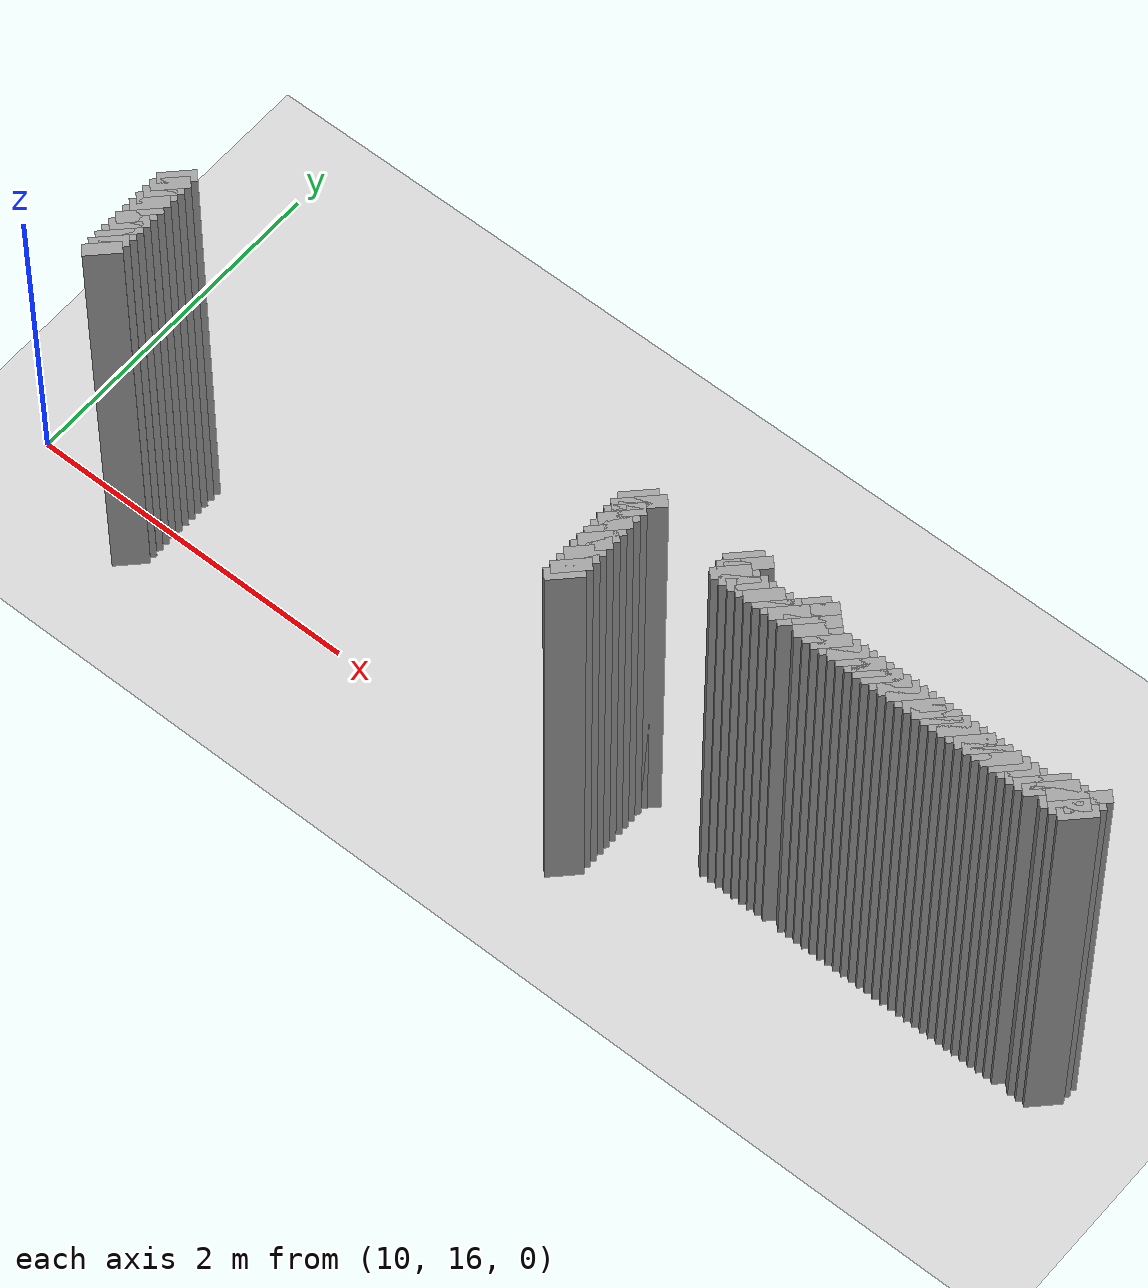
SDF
<sdf version="1.5">
 <world name="default">
  <include><uri>model://ground_plane</uri></include>
  <include><uri>model://sun</uri></include>
  <model name="grey_wall_467">
   <static>1</static>
   <link name="link">
    <pose>14.3 16.35  1.4 0 0 -0.785398163397</pose>
    <collision name="collision"><geometry><box><size>0.0707106781187 .2  2.8</size></box></geometry></collision>
    <visual name="visual">
     <cast_shadows>0</cast_shadows>
     <geometry><box><size>0.0707106781187 .2  2.8</size></box></geometry>
     <material>
      <script>
       <uri>model://grey_wall/materials/scripts</uri>
       <uri>model://grey_wall/materials/textures</uri>
       <name>vrc/grey_wall</name>
      </script>
     </material>
    </visual>
   </link>
  </model>
  <model name="grey_wall_468">
   <static>1</static>
   <link name="link">
    <pose>14.35 16.35  1.4 0 0 -0.785398163397</pose>
    <collision name="collision"><geometry><box><size>0.0707106781187 .2  2.8</size></box></geometry></collision>
    <visual name="visual">
     <cast_shadows>0</cast_shadows>
     <geometry><box><size>0.0707106781187 .2  2.8</size></box></geometry>
     <material>
      <script>
       <uri>model://grey_wall/materials/scripts</uri>
       <uri>model://grey_wall/materials/textures</uri>
       <name>vrc/grey_wall</name>
      </script>
     </material>
    </visual>
   </link>
  </model>
  <model name="grey_wall_469">
   <static>1</static>
   <link name="link">
    <pose>14.7 16.35  1.4 0 0 -0.785398163397</pose>
    <collision name="collision"><geometry><box><size>0.0707106781187 .2  2.8</size></box></geometry></collision>
    <visual name="visual">
     <cast_shadows>0</cast_shadows>
     <geometry><box><size>0.0707106781187 .2  2.8</size></box></geometry>
     <material>
      <script>
       <uri>model://grey_wall/materials/scripts</uri>
       <uri>model://grey_wall/materials/textures</uri>
       <name>vrc/grey_wall</name>
      </script>
     </material>
    </visual>
   </link>
  </model>
  <model name="grey_wall_470">
   <static>1</static>
   <link name="link">
    <pose>14.75 16.35  1.4 0 0 -0.785398163397</pose>
    <collision name="collision"><geometry><box><size>0.0707106781187 .2  2.8</size></box></geometry></collision>
    <visual name="visual">
     <cast_shadows>0</cast_shadows>
     <geometry><box><size>0.0707106781187 .2  2.8</size></box></geometry>
     <material>
      <script>
       <uri>model://grey_wall/materials/scripts</uri>
       <uri>model://grey_wall/materials/textures</uri>
       <name>vrc/grey_wall</name>
      </script>
     </material>
    </visual>
   </link>
  </model>
  <model name="grey_wall_471">
   <static>1</static>
   <link name="link">
    <pose>16.35 16.35  1.4 0 0 -0.785398163397</pose>
    <collision name="collision"><geometry><box><size>0.0707106781187 .2  2.8</size></box></geometry></collision>
    <visual name="visual">
     <cast_shadows>0</cast_shadows>
     <geometry><box><size>0.0707106781187 .2  2.8</size></box></geometry>
     <material>
      <script>
       <uri>model://grey_wall/materials/scripts</uri>
       <uri>model://grey_wall/materials/textures</uri>
       <name>vrc/grey_wall</name>
      </script>
     </material>
    </visual>
   </link>
  </model>
  <model name="grey_wall_472">
   <static>1</static>
   <link name="link">
    <pose>10.8 16.3  1.4 0 0 -0.785398163397</pose>
    <collision name="collision"><geometry><box><size>0.0707106781187 .2  2.8</size></box></geometry></collision>
    <visual name="visual">
     <cast_shadows>0</cast_shadows>
     <geometry><box><size>0.0707106781187 .2  2.8</size></box></geometry>
     <material>
      <script>
       <uri>model://grey_wall/materials/scripts</uri>
       <uri>model://grey_wall/materials/textures</uri>
       <name>vrc/grey_wall</name>
      </script>
     </material>
    </visual>
   </link>
  </model>
  <model name="grey_wall_473">
   <static>1</static>
   <link name="link">
    <pose>13.7 16.3  1.4 0 0 -0.785398163397</pose>
    <collision name="collision"><geometry><box><size>0.0707106781187 .2  2.8</size></box></geometry></collision>
    <visual name="visual">
     <cast_shadows>0</cast_shadows>
     <geometry><box><size>0.0707106781187 .2  2.8</size></box></geometry>
     <material>
      <script>
       <uri>model://grey_wall/materials/scripts</uri>
       <uri>model://grey_wall/materials/textures</uri>
       <name>vrc/grey_wall</name>
      </script>
     </material>
    </visual>
   </link>
  </model>
  <model name="grey_wall_474">
   <static>1</static>
   <link name="link">
    <pose>13.75 16.3  1.4 0 0 -0.785398163397</pose>
    <collision name="collision"><geometry><box><size>0.0707106781187 .2  2.8</size></box></geometry></collision>
    <visual name="visual">
     <cast_shadows>0</cast_shadows>
     <geometry><box><size>0.0707106781187 .2  2.8</size></box></geometry>
     <material>
      <script>
       <uri>model://grey_wall/materials/scripts</uri>
       <uri>model://grey_wall/materials/textures</uri>
       <name>vrc/grey_wall</name>
      </script>
     </material>
    </visual>
   </link>
  </model>
  <model name="grey_wall_475">
   <static>1</static>
   <link name="link">
    <pose>14.3 16.3  1.4 0 0 -0.785398163397</pose>
    <collision name="collision"><geometry><box><size>0.0707106781187 .2  2.8</size></box></geometry></collision>
    <visual name="visual">
     <cast_shadows>0</cast_shadows>
     <geometry><box><size>0.0707106781187 .2  2.8</size></box></geometry>
     <material>
      <script>
       <uri>model://grey_wall/materials/scripts</uri>
       <uri>model://grey_wall/materials/textures</uri>
       <name>vrc/grey_wall</name>
      </script>
     </material>
    </visual>
   </link>
  </model>
  <model name="grey_wall_476">
   <static>1</static>
   <link name="link">
    <pose>14.7 16.3  1.4 0 0 -0.785398163397</pose>
    <collision name="collision"><geometry><box><size>0.0707106781187 .2  2.8</size></box></geometry></collision>
    <visual name="visual">
     <cast_shadows>0</cast_shadows>
     <geometry><box><size>0.0707106781187 .2  2.8</size></box></geometry>
     <material>
      <script>
       <uri>model://grey_wall/materials/scripts</uri>
       <uri>model://grey_wall/materials/textures</uri>
       <name>vrc/grey_wall</name>
      </script>
     </material>
    </visual>
   </link>
  </model>
  <model name="grey_wall_477">
   <static>1</static>
   <link name="link">
    <pose>14.75 16.3  1.4 0 0 -0.785398163397</pose>
    <collision name="collision"><geometry><box><size>0.0707106781187 .2  2.8</size></box></geometry></collision>
    <visual name="visual">
     <cast_shadows>0</cast_shadows>
     <geometry><box><size>0.0707106781187 .2  2.8</size></box></geometry>
     <material>
      <script>
       <uri>model://grey_wall/materials/scripts</uri>
       <uri>model://grey_wall/materials/textures</uri>
       <name>vrc/grey_wall</name>
      </script>
     </material>
    </visual>
   </link>
  </model>
  <model name="grey_wall_478">
   <static>1</static>
   <link name="link">
    <pose>14.8 16.3  1.4 0 0 -0.785398163397</pose>
    <collision name="collision"><geometry><box><size>0.0707106781187 .2  2.8</size></box></geometry></collision>
    <visual name="visual">
     <cast_shadows>0</cast_shadows>
     <geometry><box><size>0.0707106781187 .2  2.8</size></box></geometry>
     <material>
      <script>
       <uri>model://grey_wall/materials/scripts</uri>
       <uri>model://grey_wall/materials/textures</uri>
       <name>vrc/grey_wall</name>
      </script>
     </material>
    </visual>
   </link>
  </model>
  <model name="grey_wall_479">
   <static>1</static>
   <link name="link">
    <pose>16.15 16.3  1.4 0 0 -0.785398163397</pose>
    <collision name="collision"><geometry><box><size>0.0707106781187 .2  2.8</size></box></geometry></collision>
    <visual name="visual">
     <cast_shadows>0</cast_shadows>
     <geometry><box><size>0.0707106781187 .2  2.8</size></box></geometry>
     <material>
      <script>
       <uri>model://grey_wall/materials/scripts</uri>
       <uri>model://grey_wall/materials/textures</uri>
       <name>vrc/grey_wall</name>
      </script>
     </material>
    </visual>
   </link>
  </model>
  <model name="grey_wall_480">
   <static>1</static>
   <link name="link">
    <pose>16.2 16.3  1.4 0 0 -0.785398163397</pose>
    <collision name="collision"><geometry><box><size>0.0707106781187 .2  2.8</size></box></geometry></collision>
    <visual name="visual">
     <cast_shadows>0</cast_shadows>
     <geometry><box><size>0.0707106781187 .2  2.8</size></box></geometry>
     <material>
      <script>
       <uri>model://grey_wall/materials/scripts</uri>
       <uri>model://grey_wall/materials/textures</uri>
       <name>vrc/grey_wall</name>
      </script>
     </material>
    </visual>
   </link>
  </model>
  <model name="grey_wall_481">
   <static>1</static>
   <link name="link">
    <pose>16.25 16.3  1.4 0 0 -0.785398163397</pose>
    <collision name="collision"><geometry><box><size>0.0707106781187 .2  2.8</size></box></geometry></collision>
    <visual name="visual">
     <cast_shadows>0</cast_shadows>
     <geometry><box><size>0.0707106781187 .2  2.8</size></box></geometry>
     <material>
      <script>
       <uri>model://grey_wall/materials/scripts</uri>
       <uri>model://grey_wall/materials/textures</uri>
       <name>vrc/grey_wall</name>
      </script>
     </material>
    </visual>
   </link>
  </model>
  <model name="grey_wall_482">
   <static>1</static>
   <link name="link">
    <pose>16.35 16.3  1.4 0 0 -0.785398163397</pose>
    <collision name="collision"><geometry><box><size>0.0707106781187 .2  2.8</size></box></geometry></collision>
    <visual name="visual">
     <cast_shadows>0</cast_shadows>
     <geometry><box><size>0.0707106781187 .2  2.8</size></box></geometry>
     <material>
      <script>
       <uri>model://grey_wall/materials/scripts</uri>
       <uri>model://grey_wall/materials/textures</uri>
       <name>vrc/grey_wall</name>
      </script>
     </material>
    </visual>
   </link>
  </model>
  <model name="grey_wall_483">
   <static>1</static>
   <link name="link">
    <pose>10.8 16.25  1.4 0 0 -0.785398163397</pose>
    <collision name="collision"><geometry><box><size>0.0707106781187 .2  2.8</size></box></geometry></collision>
    <visual name="visual">
     <cast_shadows>0</cast_shadows>
     <geometry><box><size>0.0707106781187 .2  2.8</size></box></geometry>
     <material>
      <script>
       <uri>model://grey_wall/materials/scripts</uri>
       <uri>model://grey_wall/materials/textures</uri>
       <name>vrc/grey_wall</name>
      </script>
     </material>
    </visual>
   </link>
  </model>
  <model name="grey_wall_484">
   <static>1</static>
   <link name="link">
    <pose>13.7 16.25  1.4 0 0 -0.785398163397</pose>
    <collision name="collision"><geometry><box><size>0.0707106781187 .2  2.8</size></box></geometry></collision>
    <visual name="visual">
     <cast_shadows>0</cast_shadows>
     <geometry><box><size>0.0707106781187 .2  2.8</size></box></geometry>
     <material>
      <script>
       <uri>model://grey_wall/materials/scripts</uri>
       <uri>model://grey_wall/materials/textures</uri>
       <name>vrc/grey_wall</name>
      </script>
     </material>
    </visual>
   </link>
  </model>
  <model name="grey_wall_485">
   <static>1</static>
   <link name="link">
    <pose>14.3 16.25  1.4 0 0 -0.785398163397</pose>
    <collision name="collision"><geometry><box><size>0.0707106781187 .2  2.8</size></box></geometry></collision>
    <visual name="visual">
     <cast_shadows>0</cast_shadows>
     <geometry><box><size>0.0707106781187 .2  2.8</size></box></geometry>
     <material>
      <script>
       <uri>model://grey_wall/materials/scripts</uri>
       <uri>model://grey_wall/materials/textures</uri>
       <name>vrc/grey_wall</name>
      </script>
     </material>
    </visual>
   </link>
  </model>
  <model name="grey_wall_486">
   <static>1</static>
   <link name="link">
    <pose>14.35 16.25  1.4 0 0 -0.785398163397</pose>
    <collision name="collision"><geometry><box><size>0.0707106781187 .2  2.8</size></box></geometry></collision>
    <visual name="visual">
     <cast_shadows>0</cast_shadows>
     <geometry><box><size>0.0707106781187 .2  2.8</size></box></geometry>
     <material>
      <script>
       <uri>model://grey_wall/materials/scripts</uri>
       <uri>model://grey_wall/materials/textures</uri>
       <name>vrc/grey_wall</name>
      </script>
     </material>
    </visual>
   </link>
  </model>
  <model name="grey_wall_487">
   <static>1</static>
   <link name="link">
    <pose>14.4 16.25  1.4 0 0 -0.785398163397</pose>
    <collision name="collision"><geometry><box><size>0.0707106781187 .2  2.8</size></box></geometry></collision>
    <visual name="visual">
     <cast_shadows>0</cast_shadows>
     <geometry><box><size>0.0707106781187 .2  2.8</size></box></geometry>
     <material>
      <script>
       <uri>model://grey_wall/materials/scripts</uri>
       <uri>model://grey_wall/materials/textures</uri>
       <name>vrc/grey_wall</name>
      </script>
     </material>
    </visual>
   </link>
  </model>
  <model name="grey_wall_488">
   <static>1</static>
   <link name="link">
    <pose>14.45 16.25  1.4 0 0 -0.785398163397</pose>
    <collision name="collision"><geometry><box><size>0.0707106781187 .2  2.8</size></box></geometry></collision>
    <visual name="visual">
     <cast_shadows>0</cast_shadows>
     <geometry><box><size>0.0707106781187 .2  2.8</size></box></geometry>
     <material>
      <script>
       <uri>model://grey_wall/materials/scripts</uri>
       <uri>model://grey_wall/materials/textures</uri>
       <name>vrc/grey_wall</name>
      </script>
     </material>
    </visual>
   </link>
  </model>
  <model name="grey_wall_489">
   <static>1</static>
   <link name="link">
    <pose>14.5 16.25  1.4 0 0 -0.785398163397</pose>
    <collision name="collision"><geometry><box><size>0.0707106781187 .2  2.8</size></box></geometry></collision>
    <visual name="visual">
     <cast_shadows>0</cast_shadows>
     <geometry><box><size>0.0707106781187 .2  2.8</size></box></geometry>
     <material>
      <script>
       <uri>model://grey_wall/materials/scripts</uri>
       <uri>model://grey_wall/materials/textures</uri>
       <name>vrc/grey_wall</name>
      </script>
     </material>
    </visual>
   </link>
  </model>
  <model name="grey_wall_490">
   <static>1</static>
   <link name="link">
    <pose>14.55 16.25  1.4 0 0 -0.785398163397</pose>
    <collision name="collision"><geometry><box><size>0.0707106781187 .2  2.8</size></box></geometry></collision>
    <visual name="visual">
     <cast_shadows>0</cast_shadows>
     <geometry><box><size>0.0707106781187 .2  2.8</size></box></geometry>
     <material>
      <script>
       <uri>model://grey_wall/materials/scripts</uri>
       <uri>model://grey_wall/materials/textures</uri>
       <name>vrc/grey_wall</name>
      </script>
     </material>
    </visual>
   </link>
  </model>
  <model name="grey_wall_491">
   <static>1</static>
   <link name="link">
    <pose>14.6 16.25  1.4 0 0 -0.785398163397</pose>
    <collision name="collision"><geometry><box><size>0.0707106781187 .2  2.8</size></box></geometry></collision>
    <visual name="visual">
     <cast_shadows>0</cast_shadows>
     <geometry><box><size>0.0707106781187 .2  2.8</size></box></geometry>
     <material>
      <script>
       <uri>model://grey_wall/materials/scripts</uri>
       <uri>model://grey_wall/materials/textures</uri>
       <name>vrc/grey_wall</name>
      </script>
     </material>
    </visual>
   </link>
  </model>
  <model name="grey_wall_492">
   <static>1</static>
   <link name="link">
    <pose>14.65 16.25  1.4 0 0 -0.785398163397</pose>
    <collision name="collision"><geometry><box><size>0.0707106781187 .2  2.8</size></box></geometry></collision>
    <visual name="visual">
     <cast_shadows>0</cast_shadows>
     <geometry><box><size>0.0707106781187 .2  2.8</size></box></geometry>
     <material>
      <script>
       <uri>model://grey_wall/materials/scripts</uri>
       <uri>model://grey_wall/materials/textures</uri>
       <name>vrc/grey_wall</name>
      </script>
     </material>
    </visual>
   </link>
  </model>
  <model name="grey_wall_493">
   <static>1</static>
   <link name="link">
    <pose>14.7 16.25  1.4 0 0 -0.785398163397</pose>
    <collision name="collision"><geometry><box><size>0.0707106781187 .2  2.8</size></box></geometry></collision>
    <visual name="visual">
     <cast_shadows>0</cast_shadows>
     <geometry><box><size>0.0707106781187 .2  2.8</size></box></geometry>
     <material>
      <script>
       <uri>model://grey_wall/materials/scripts</uri>
       <uri>model://grey_wall/materials/textures</uri>
       <name>vrc/grey_wall</name>
      </script>
     </material>
    </visual>
   </link>
  </model>
  <model name="grey_wall_494">
   <static>1</static>
   <link name="link">
    <pose>14.8 16.25  1.4 0 0 -0.785398163397</pose>
    <collision name="collision"><geometry><box><size>0.0707106781187 .2  2.8</size></box></geometry></collision>
    <visual name="visual">
     <cast_shadows>0</cast_shadows>
     <geometry><box><size>0.0707106781187 .2  2.8</size></box></geometry>
     <material>
      <script>
       <uri>model://grey_wall/materials/scripts</uri>
       <uri>model://grey_wall/materials/textures</uri>
       <name>vrc/grey_wall</name>
      </script>
     </material>
    </visual>
   </link>
  </model>
  <model name="grey_wall_495">
   <static>1</static>
   <link name="link">
    <pose>14.85 16.25  1.4 0 0 -0.785398163397</pose>
    <collision name="collision"><geometry><box><size>0.0707106781187 .2  2.8</size></box></geometry></collision>
    <visual name="visual">
     <cast_shadows>0</cast_shadows>
     <geometry><box><size>0.0707106781187 .2  2.8</size></box></geometry>
     <material>
      <script>
       <uri>model://grey_wall/materials/scripts</uri>
       <uri>model://grey_wall/materials/textures</uri>
       <name>vrc/grey_wall</name>
      </script>
     </material>
    </visual>
   </link>
  </model>
  <model name="grey_wall_496">
   <static>1</static>
   <link name="link">
    <pose>14.9 16.25  1.4 0 0 -0.785398163397</pose>
    <collision name="collision"><geometry><box><size>0.0707106781187 .2  2.8</size></box></geometry></collision>
    <visual name="visual">
     <cast_shadows>0</cast_shadows>
     <geometry><box><size>0.0707106781187 .2  2.8</size></box></geometry>
     <material>
      <script>
       <uri>model://grey_wall/materials/scripts</uri>
       <uri>model://grey_wall/materials/textures</uri>
       <name>vrc/grey_wall</name>
      </script>
     </material>
    </visual>
   </link>
  </model>
  <model name="grey_wall_497">
   <static>1</static>
   <link name="link">
    <pose>14.95 16.25  1.4 0 0 -0.785398163397</pose>
    <collision name="collision"><geometry><box><size>0.0707106781187 .2  2.8</size></box></geometry></collision>
    <visual name="visual">
     <cast_shadows>0</cast_shadows>
     <geometry><box><size>0.0707106781187 .2  2.8</size></box></geometry>
     <material>
      <script>
       <uri>model://grey_wall/materials/scripts</uri>
       <uri>model://grey_wall/materials/textures</uri>
       <name>vrc/grey_wall</name>
      </script>
     </material>
    </visual>
   </link>
  </model>
  <model name="grey_wall_498">
   <static>1</static>
   <link name="link">
    <pose>15.0 16.25  1.4 0 0 -0.785398163397</pose>
    <collision name="collision"><geometry><box><size>0.0707106781187 .2  2.8</size></box></geometry></collision>
    <visual name="visual">
     <cast_shadows>0</cast_shadows>
     <geometry><box><size>0.0707106781187 .2  2.8</size></box></geometry>
     <material>
      <script>
       <uri>model://grey_wall/materials/scripts</uri>
       <uri>model://grey_wall/materials/textures</uri>
       <name>vrc/grey_wall</name>
      </script>
     </material>
    </visual>
   </link>
  </model>
  <model name="grey_wall_499">
   <static>1</static>
   <link name="link">
    <pose>15.05 16.25  1.4 0 0 -0.785398163397</pose>
    <collision name="collision"><geometry><box><size>0.0707106781187 .2  2.8</size></box></geometry></collision>
    <visual name="visual">
     <cast_shadows>0</cast_shadows>
     <geometry><box><size>0.0707106781187 .2  2.8</size></box></geometry>
     <material>
      <script>
       <uri>model://grey_wall/materials/scripts</uri>
       <uri>model://grey_wall/materials/textures</uri>
       <name>vrc/grey_wall</name>
      </script>
     </material>
    </visual>
   </link>
  </model>
  <model name="grey_wall_500">
   <static>1</static>
   <link name="link">
    <pose>15.1 16.25  1.4 0 0 -0.785398163397</pose>
    <collision name="collision"><geometry><box><size>0.0707106781187 .2  2.8</size></box></geometry></collision>
    <visual name="visual">
     <cast_shadows>0</cast_shadows>
     <geometry><box><size>0.0707106781187 .2  2.8</size></box></geometry>
     <material>
      <script>
       <uri>model://grey_wall/materials/scripts</uri>
       <uri>model://grey_wall/materials/textures</uri>
       <name>vrc/grey_wall</name>
      </script>
     </material>
    </visual>
   </link>
  </model>
  <model name="grey_wall_501">
   <static>1</static>
   <link name="link">
    <pose>15.15 16.25  1.4 0 0 -0.785398163397</pose>
    <collision name="collision"><geometry><box><size>0.0707106781187 .2  2.8</size></box></geometry></collision>
    <visual name="visual">
     <cast_shadows>0</cast_shadows>
     <geometry><box><size>0.0707106781187 .2  2.8</size></box></geometry>
     <material>
      <script>
       <uri>model://grey_wall/materials/scripts</uri>
       <uri>model://grey_wall/materials/textures</uri>
       <name>vrc/grey_wall</name>
      </script>
     </material>
    </visual>
   </link>
  </model>
  <model name="grey_wall_502">
   <static>1</static>
   <link name="link">
    <pose>15.2 16.25  1.4 0 0 -0.785398163397</pose>
    <collision name="collision"><geometry><box><size>0.0707106781187 .2  2.8</size></box></geometry></collision>
    <visual name="visual">
     <cast_shadows>0</cast_shadows>
     <geometry><box><size>0.0707106781187 .2  2.8</size></box></geometry>
     <material>
      <script>
       <uri>model://grey_wall/materials/scripts</uri>
       <uri>model://grey_wall/materials/textures</uri>
       <name>vrc/grey_wall</name>
      </script>
     </material>
    </visual>
   </link>
  </model>
  <model name="grey_wall_503">
   <static>1</static>
   <link name="link">
    <pose>15.25 16.25  1.4 0 0 -0.785398163397</pose>
    <collision name="collision"><geometry><box><size>0.0707106781187 .2  2.8</size></box></geometry></collision>
    <visual name="visual">
     <cast_shadows>0</cast_shadows>
     <geometry><box><size>0.0707106781187 .2  2.8</size></box></geometry>
     <material>
      <script>
       <uri>model://grey_wall/materials/scripts</uri>
       <uri>model://grey_wall/materials/textures</uri>
       <name>vrc/grey_wall</name>
      </script>
     </material>
    </visual>
   </link>
  </model>
  <model name="grey_wall_504">
   <static>1</static>
   <link name="link">
    <pose>15.3 16.25  1.4 0 0 -0.785398163397</pose>
    <collision name="collision"><geometry><box><size>0.0707106781187 .2  2.8</size></box></geometry></collision>
    <visual name="visual">
     <cast_shadows>0</cast_shadows>
     <geometry><box><size>0.0707106781187 .2  2.8</size></box></geometry>
     <material>
      <script>
       <uri>model://grey_wall/materials/scripts</uri>
       <uri>model://grey_wall/materials/textures</uri>
       <name>vrc/grey_wall</name>
      </script>
     </material>
    </visual>
   </link>
  </model>
  <model name="grey_wall_505">
   <static>1</static>
   <link name="link">
    <pose>15.35 16.25  1.4 0 0 -0.785398163397</pose>
    <collision name="collision"><geometry><box><size>0.0707106781187 .2  2.8</size></box></geometry></collision>
    <visual name="visual">
     <cast_shadows>0</cast_shadows>
     <geometry><box><size>0.0707106781187 .2  2.8</size></box></geometry>
     <material>
      <script>
       <uri>model://grey_wall/materials/scripts</uri>
       <uri>model://grey_wall/materials/textures</uri>
       <name>vrc/grey_wall</name>
      </script>
     </material>
    </visual>
   </link>
  </model>
  <model name="grey_wall_506">
   <static>1</static>
   <link name="link">
    <pose>15.4 16.25  1.4 0 0 -0.785398163397</pose>
    <collision name="collision"><geometry><box><size>0.0707106781187 .2  2.8</size></box></geometry></collision>
    <visual name="visual">
     <cast_shadows>0</cast_shadows>
     <geometry><box><size>0.0707106781187 .2  2.8</size></box></geometry>
     <material>
      <script>
       <uri>model://grey_wall/materials/scripts</uri>
       <uri>model://grey_wall/materials/textures</uri>
       <name>vrc/grey_wall</name>
      </script>
     </material>
    </visual>
   </link>
  </model>
  <model name="grey_wall_507">
   <static>1</static>
   <link name="link">
    <pose>15.45 16.25  1.4 0 0 -0.785398163397</pose>
    <collision name="collision"><geometry><box><size>0.0707106781187 .2  2.8</size></box></geometry></collision>
    <visual name="visual">
     <cast_shadows>0</cast_shadows>
     <geometry><box><size>0.0707106781187 .2  2.8</size></box></geometry>
     <material>
      <script>
       <uri>model://grey_wall/materials/scripts</uri>
       <uri>model://grey_wall/materials/textures</uri>
       <name>vrc/grey_wall</name>
      </script>
     </material>
    </visual>
   </link>
  </model>
  <model name="grey_wall_508">
   <static>1</static>
   <link name="link">
    <pose>15.5 16.25  1.4 0 0 -0.785398163397</pose>
    <collision name="collision"><geometry><box><size>0.0707106781187 .2  2.8</size></box></geometry></collision>
    <visual name="visual">
     <cast_shadows>0</cast_shadows>
     <geometry><box><size>0.0707106781187 .2  2.8</size></box></geometry>
     <material>
      <script>
       <uri>model://grey_wall/materials/scripts</uri>
       <uri>model://grey_wall/materials/textures</uri>
       <name>vrc/grey_wall</name>
      </script>
     </material>
    </visual>
   </link>
  </model>
  <model name="grey_wall_509">
   <static>1</static>
   <link name="link">
    <pose>15.55 16.25  1.4 0 0 -0.785398163397</pose>
    <collision name="collision"><geometry><box><size>0.0707106781187 .2  2.8</size></box></geometry></collision>
    <visual name="visual">
     <cast_shadows>0</cast_shadows>
     <geometry><box><size>0.0707106781187 .2  2.8</size></box></geometry>
     <material>
      <script>
       <uri>model://grey_wall/materials/scripts</uri>
       <uri>model://grey_wall/materials/textures</uri>
       <name>vrc/grey_wall</name>
      </script>
     </material>
    </visual>
   </link>
  </model>
  <model name="grey_wall_510">
   <static>1</static>
   <link name="link">
    <pose>15.6 16.25  1.4 0 0 -0.785398163397</pose>
    <collision name="collision"><geometry><box><size>0.0707106781187 .2  2.8</size></box></geometry></collision>
    <visual name="visual">
     <cast_shadows>0</cast_shadows>
     <geometry><box><size>0.0707106781187 .2  2.8</size></box></geometry>
     <material>
      <script>
       <uri>model://grey_wall/materials/scripts</uri>
       <uri>model://grey_wall/materials/textures</uri>
       <name>vrc/grey_wall</name>
      </script>
     </material>
    </visual>
   </link>
  </model>
  <model name="grey_wall_511">
   <static>1</static>
   <link name="link">
    <pose>15.65 16.25  1.4 0 0 -0.785398163397</pose>
    <collision name="collision"><geometry><box><size>0.0707106781187 .2  2.8</size></box></geometry></collision>
    <visual name="visual">
     <cast_shadows>0</cast_shadows>
     <geometry><box><size>0.0707106781187 .2  2.8</size></box></geometry>
     <material>
      <script>
       <uri>model://grey_wall/materials/scripts</uri>
       <uri>model://grey_wall/materials/textures</uri>
       <name>vrc/grey_wall</name>
      </script>
     </material>
    </visual>
   </link>
  </model>
  <model name="grey_wall_512">
   <static>1</static>
   <link name="link">
    <pose>15.7 16.25  1.4 0 0 -0.785398163397</pose>
    <collision name="collision"><geometry><box><size>0.0707106781187 .2  2.8</size></box></geometry></collision>
    <visual name="visual">
     <cast_shadows>0</cast_shadows>
     <geometry><box><size>0.0707106781187 .2  2.8</size></box></geometry>
     <material>
      <script>
       <uri>model://grey_wall/materials/scripts</uri>
       <uri>model://grey_wall/materials/textures</uri>
       <name>vrc/grey_wall</name>
      </script>
     </material>
    </visual>
   </link>
  </model>
  <model name="grey_wall_513">
   <static>1</static>
   <link name="link">
    <pose>15.75 16.25  1.4 0 0 -0.785398163397</pose>
    <collision name="collision"><geometry><box><size>0.0707106781187 .2  2.8</size></box></geometry></collision>
    <visual name="visual">
     <cast_shadows>0</cast_shadows>
     <geometry><box><size>0.0707106781187 .2  2.8</size></box></geometry>
     <material>
      <script>
       <uri>model://grey_wall/materials/scripts</uri>
       <uri>model://grey_wall/materials/textures</uri>
       <name>vrc/grey_wall</name>
      </script>
     </material>
    </visual>
   </link>
  </model>
  <model name="grey_wall_514">
   <static>1</static>
   <link name="link">
    <pose>15.8 16.25  1.4 0 0 -0.785398163397</pose>
    <collision name="collision"><geometry><box><size>0.0707106781187 .2  2.8</size></box></geometry></collision>
    <visual name="visual">
     <cast_shadows>0</cast_shadows>
     <geometry><box><size>0.0707106781187 .2  2.8</size></box></geometry>
     <material>
      <script>
       <uri>model://grey_wall/materials/scripts</uri>
       <uri>model://grey_wall/materials/textures</uri>
       <name>vrc/grey_wall</name>
      </script>
     </material>
    </visual>
   </link>
  </model>
  <model name="grey_wall_515">
   <static>1</static>
   <link name="link">
    <pose>15.85 16.25  1.4 0 0 -0.785398163397</pose>
    <collision name="collision"><geometry><box><size>0.0707106781187 .2  2.8</size></box></geometry></collision>
    <visual name="visual">
     <cast_shadows>0</cast_shadows>
     <geometry><box><size>0.0707106781187 .2  2.8</size></box></geometry>
     <material>
      <script>
       <uri>model://grey_wall/materials/scripts</uri>
       <uri>model://grey_wall/materials/textures</uri>
       <name>vrc/grey_wall</name>
      </script>
     </material>
    </visual>
   </link>
  </model>
  <model name="grey_wall_516">
   <static>1</static>
   <link name="link">
    <pose>15.9 16.25  1.4 0 0 -0.785398163397</pose>
    <collision name="collision"><geometry><box><size>0.0707106781187 .2  2.8</size></box></geometry></collision>
    <visual name="visual">
     <cast_shadows>0</cast_shadows>
     <geometry><box><size>0.0707106781187 .2  2.8</size></box></geometry>
     <material>
      <script>
       <uri>model://grey_wall/materials/scripts</uri>
       <uri>model://grey_wall/materials/textures</uri>
       <name>vrc/grey_wall</name>
      </script>
     </material>
    </visual>
   </link>
  </model>
  <model name="grey_wall_517">
   <static>1</static>
   <link name="link">
    <pose>15.95 16.25  1.4 0 0 -0.785398163397</pose>
    <collision name="collision"><geometry><box><size>0.0707106781187 .2  2.8</size></box></geometry></collision>
    <visual name="visual">
     <cast_shadows>0</cast_shadows>
     <geometry><box><size>0.0707106781187 .2  2.8</size></box></geometry>
     <material>
      <script>
       <uri>model://grey_wall/materials/scripts</uri>
       <uri>model://grey_wall/materials/textures</uri>
       <name>vrc/grey_wall</name>
      </script>
     </material>
    </visual>
   </link>
  </model>
  <model name="grey_wall_518">
   <static>1</static>
   <link name="link">
    <pose>16.0 16.25  1.4 0 0 -0.785398163397</pose>
    <collision name="collision"><geometry><box><size>0.0707106781187 .2  2.8</size></box></geometry></collision>
    <visual name="visual">
     <cast_shadows>0</cast_shadows>
     <geometry><box><size>0.0707106781187 .2  2.8</size></box></geometry>
     <material>
      <script>
       <uri>model://grey_wall/materials/scripts</uri>
       <uri>model://grey_wall/materials/textures</uri>
       <name>vrc/grey_wall</name>
      </script>
     </material>
    </visual>
   </link>
  </model>
  <model name="grey_wall_519">
   <static>1</static>
   <link name="link">
    <pose>16.05 16.25  1.4 0 0 -0.785398163397</pose>
    <collision name="collision"><geometry><box><size>0.0707106781187 .2  2.8</size></box></geometry></collision>
    <visual name="visual">
     <cast_shadows>0</cast_shadows>
     <geometry><box><size>0.0707106781187 .2  2.8</size></box></geometry>
     <material>
      <script>
       <uri>model://grey_wall/materials/scripts</uri>
       <uri>model://grey_wall/materials/textures</uri>
       <name>vrc/grey_wall</name>
      </script>
     </material>
    </visual>
   </link>
  </model>
  <model name="grey_wall_520">
   <static>1</static>
   <link name="link">
    <pose>16.1 16.25  1.4 0 0 -0.785398163397</pose>
    <collision name="collision"><geometry><box><size>0.0707106781187 .2  2.8</size></box></geometry></collision>
    <visual name="visual">
     <cast_shadows>0</cast_shadows>
     <geometry><box><size>0.0707106781187 .2  2.8</size></box></geometry>
     <material>
      <script>
       <uri>model://grey_wall/materials/scripts</uri>
       <uri>model://grey_wall/materials/textures</uri>
       <name>vrc/grey_wall</name>
      </script>
     </material>
    </visual>
   </link>
  </model>
  <model name="grey_wall_521">
   <static>1</static>
   <link name="link">
    <pose>16.15 16.25  1.4 0 0 -0.785398163397</pose>
    <collision name="collision"><geometry><box><size>0.0707106781187 .2  2.8</size></box></geometry></collision>
    <visual name="visual">
     <cast_shadows>0</cast_shadows>
     <geometry><box><size>0.0707106781187 .2  2.8</size></box></geometry>
     <material>
      <script>
       <uri>model://grey_wall/materials/scripts</uri>
       <uri>model://grey_wall/materials/textures</uri>
       <name>vrc/grey_wall</name>
      </script>
     </material>
    </visual>
   </link>
  </model>
  <model name="grey_wall_522">
   <static>1</static>
   <link name="link">
    <pose>16.25 16.25  1.4 0 0 -0.785398163397</pose>
    <collision name="collision"><geometry><box><size>0.0707106781187 .2  2.8</size></box></geometry></collision>
    <visual name="visual">
     <cast_shadows>0</cast_shadows>
     <geometry><box><size>0.0707106781187 .2  2.8</size></box></geometry>
     <material>
      <script>
       <uri>model://grey_wall/materials/scripts</uri>
       <uri>model://grey_wall/materials/textures</uri>
       <name>vrc/grey_wall</name>
      </script>
     </material>
    </visual>
   </link>
  </model>
  <model name="grey_wall_523">
   <static>1</static>
   <link name="link">
    <pose>16.3 16.25  1.4 0 0 -0.785398163397</pose>
    <collision name="collision"><geometry><box><size>0.0707106781187 .2  2.8</size></box></geometry></collision>
    <visual name="visual">
     <cast_shadows>0</cast_shadows>
     <geometry><box><size>0.0707106781187 .2  2.8</size></box></geometry>
     <material>
      <script>
       <uri>model://grey_wall/materials/scripts</uri>
       <uri>model://grey_wall/materials/textures</uri>
       <name>vrc/grey_wall</name>
      </script>
     </material>
    </visual>
   </link>
  </model>
  <model name="grey_wall_524">
   <static>1</static>
   <link name="link">
    <pose>16.35 16.25  1.4 0 0 -0.785398163397</pose>
    <collision name="collision"><geometry><box><size>0.0707106781187 .2  2.8</size></box></geometry></collision>
    <visual name="visual">
     <cast_shadows>0</cast_shadows>
     <geometry><box><size>0.0707106781187 .2  2.8</size></box></geometry>
     <material>
      <script>
       <uri>model://grey_wall/materials/scripts</uri>
       <uri>model://grey_wall/materials/textures</uri>
       <name>vrc/grey_wall</name>
      </script>
     </material>
    </visual>
   </link>
  </model>
  <model name="grey_wall_525">
   <static>1</static>
   <link name="link">
    <pose>10.8 16.2  1.4 0 0 -0.785398163397</pose>
    <collision name="collision"><geometry><box><size>0.0707106781187 .2  2.8</size></box></geometry></collision>
    <visual name="visual">
     <cast_shadows>0</cast_shadows>
     <geometry><box><size>0.0707106781187 .2  2.8</size></box></geometry>
     <material>
      <script>
       <uri>model://grey_wall/materials/scripts</uri>
       <uri>model://grey_wall/materials/textures</uri>
       <name>vrc/grey_wall</name>
      </script>
     </material>
    </visual>
   </link>
  </model>
  <model name="grey_wall_526">
   <static>1</static>
   <link name="link">
    <pose>13.7 16.2  1.4 0 0 -0.785398163397</pose>
    <collision name="collision"><geometry><box><size>0.0707106781187 .2  2.8</size></box></geometry></collision>
    <visual name="visual">
     <cast_shadows>0</cast_shadows>
     <geometry><box><size>0.0707106781187 .2  2.8</size></box></geometry>
     <material>
      <script>
       <uri>model://grey_wall/materials/scripts</uri>
       <uri>model://grey_wall/materials/textures</uri>
       <name>vrc/grey_wall</name>
      </script>
     </material>
    </visual>
   </link>
  </model>
  <model name="grey_wall_527">
   <static>1</static>
   <link name="link">
    <pose>10.8 16.15  1.4 0 0 -0.785398163397</pose>
    <collision name="collision"><geometry><box><size>0.0707106781187 .2  2.8</size></box></geometry></collision>
    <visual name="visual">
     <cast_shadows>0</cast_shadows>
     <geometry><box><size>0.0707106781187 .2  2.8</size></box></geometry>
     <material>
      <script>
       <uri>model://grey_wall/materials/scripts</uri>
       <uri>model://grey_wall/materials/textures</uri>
       <name>vrc/grey_wall</name>
      </script>
     </material>
    </visual>
   </link>
  </model>
  <model name="grey_wall_528">
   <static>1</static>
   <link name="link">
    <pose>13.7 16.15  1.4 0 0 -0.785398163397</pose>
    <collision name="collision"><geometry><box><size>0.0707106781187 .2  2.8</size></box></geometry></collision>
    <visual name="visual">
     <cast_shadows>0</cast_shadows>
     <geometry><box><size>0.0707106781187 .2  2.8</size></box></geometry>
     <material>
      <script>
       <uri>model://grey_wall/materials/scripts</uri>
       <uri>model://grey_wall/materials/textures</uri>
       <name>vrc/grey_wall</name>
      </script>
     </material>
    </visual>
   </link>
  </model>
  <model name="grey_wall_529">
   <static>1</static>
   <link name="link">
    <pose>10.8 16.1  1.4 0 0 -0.785398163397</pose>
    <collision name="collision"><geometry><box><size>0.0707106781187 .2  2.8</size></box></geometry></collision>
    <visual name="visual">
     <cast_shadows>0</cast_shadows>
     <geometry><box><size>0.0707106781187 .2  2.8</size></box></geometry>
     <material>
      <script>
       <uri>model://grey_wall/materials/scripts</uri>
       <uri>model://grey_wall/materials/textures</uri>
       <name>vrc/grey_wall</name>
      </script>
     </material>
    </visual>
   </link>
  </model>
  <model name="grey_wall_530">
   <static>1</static>
   <link name="link">
    <pose>13.7 16.1  1.4 0 0 -0.785398163397</pose>
    <collision name="collision"><geometry><box><size>0.0707106781187 .2  2.8</size></box></geometry></collision>
    <visual name="visual">
     <cast_shadows>0</cast_shadows>
     <geometry><box><size>0.0707106781187 .2  2.8</size></box></geometry>
     <material>
      <script>
       <uri>model://grey_wall/materials/scripts</uri>
       <uri>model://grey_wall/materials/textures</uri>
       <name>vrc/grey_wall</name>
      </script>
     </material>
    </visual>
   </link>
  </model>
  <model name="grey_wall_531">
   <static>1</static>
   <link name="link">
    <pose>10.8 16.05  1.4 0 0 -0.785398163397</pose>
    <collision name="collision"><geometry><box><size>0.0707106781187 .2  2.8</size></box></geometry></collision>
    <visual name="visual">
     <cast_shadows>0</cast_shadows>
     <geometry><box><size>0.0707106781187 .2  2.8</size></box></geometry>
     <material>
      <script>
       <uri>model://grey_wall/materials/scripts</uri>
       <uri>model://grey_wall/materials/textures</uri>
       <name>vrc/grey_wall</name>
      </script>
     </material>
    </visual>
   </link>
  </model>
  <model name="grey_wall_532">
   <static>1</static>
   <link name="link">
    <pose>13.7 16.05  1.4 0 0 -0.785398163397</pose>
    <collision name="collision"><geometry><box><size>0.0707106781187 .2  2.8</size></box></geometry></collision>
    <visual name="visual">
     <cast_shadows>0</cast_shadows>
     <geometry><box><size>0.0707106781187 .2  2.8</size></box></geometry>
     <material>
      <script>
       <uri>model://grey_wall/materials/scripts</uri>
       <uri>model://grey_wall/materials/textures</uri>
       <name>vrc/grey_wall</name>
      </script>
     </material>
    </visual>
   </link>
  </model>
  <model name="grey_wall_533">
   <static>1</static>
   <link name="link">
    <pose>10.8 16.0  1.4 0 0 -0.785398163397</pose>
    <collision name="collision"><geometry><box><size>0.0707106781187 .2  2.8</size></box></geometry></collision>
    <visual name="visual">
     <cast_shadows>0</cast_shadows>
     <geometry><box><size>0.0707106781187 .2  2.8</size></box></geometry>
     <material>
      <script>
       <uri>model://grey_wall/materials/scripts</uri>
       <uri>model://grey_wall/materials/textures</uri>
       <name>vrc/grey_wall</name>
      </script>
     </material>
    </visual>
   </link>
  </model>
  <model name="grey_wall_534">
   <static>1</static>
   <link name="link">
    <pose>13.7 16.0  1.4 0 0 -0.785398163397</pose>
    <collision name="collision"><geometry><box><size>0.0707106781187 .2  2.8</size></box></geometry></collision>
    <visual name="visual">
     <cast_shadows>0</cast_shadows>
     <geometry><box><size>0.0707106781187 .2  2.8</size></box></geometry>
     <material>
      <script>
       <uri>model://grey_wall/materials/scripts</uri>
       <uri>model://grey_wall/materials/textures</uri>
       <name>vrc/grey_wall</name>
      </script>
     </material>
    </visual>
   </link>
  </model>
  <model name="grey_wall_535">
   <static>1</static>
   <link name="link">
    <pose>10.8 15.95  1.4 0 0 -0.785398163397</pose>
    <collision name="collision"><geometry><box><size>0.0707106781187 .2  2.8</size></box></geometry></collision>
    <visual name="visual">
     <cast_shadows>0</cast_shadows>
     <geometry><box><size>0.0707106781187 .2  2.8</size></box></geometry>
     <material>
      <script>
       <uri>model://grey_wall/materials/scripts</uri>
       <uri>model://grey_wall/materials/textures</uri>
       <name>vrc/grey_wall</name>
      </script>
     </material>
    </visual>
   </link>
  </model>
  <model name="grey_wall_536">
   <static>1</static>
   <link name="link">
    <pose>13.7 15.95  1.4 0 0 -0.785398163397</pose>
    <collision name="collision"><geometry><box><size>0.0707106781187 .2  2.8</size></box></geometry></collision>
    <visual name="visual">
     <cast_shadows>0</cast_shadows>
     <geometry><box><size>0.0707106781187 .2  2.8</size></box></geometry>
     <material>
      <script>
       <uri>model://grey_wall/materials/scripts</uri>
       <uri>model://grey_wall/materials/textures</uri>
       <name>vrc/grey_wall</name>
      </script>
     </material>
    </visual>
   </link>
  </model>
  <model name="grey_wall_537">
   <static>1</static>
   <link name="link">
    <pose>10.8 15.9  1.4 0 0 -0.785398163397</pose>
    <collision name="collision"><geometry><box><size>0.0707106781187 .2  2.8</size></box></geometry></collision>
    <visual name="visual">
     <cast_shadows>0</cast_shadows>
     <geometry><box><size>0.0707106781187 .2  2.8</size></box></geometry>
     <material>
      <script>
       <uri>model://grey_wall/materials/scripts</uri>
       <uri>model://grey_wall/materials/textures</uri>
       <name>vrc/grey_wall</name>
      </script>
     </material>
    </visual>
   </link>
  </model>
  <model name="grey_wall_538">
   <static>1</static>
   <link name="link">
    <pose>13.7 15.9  1.4 0 0 -0.785398163397</pose>
    <collision name="collision"><geometry><box><size>0.0707106781187 .2  2.8</size></box></geometry></collision>
    <visual name="visual">
     <cast_shadows>0</cast_shadows>
     <geometry><box><size>0.0707106781187 .2  2.8</size></box></geometry>
     <material>
      <script>
       <uri>model://grey_wall/materials/scripts</uri>
       <uri>model://grey_wall/materials/textures</uri>
       <name>vrc/grey_wall</name>
      </script>
     </material>
    </visual>
   </link>
  </model>
  <model name="grey_wall_539">
   <static>1</static>
   <link name="link">
    <pose>10.8 15.85  1.4 0 0 -0.785398163397</pose>
    <collision name="collision"><geometry><box><size>0.0707106781187 .2  2.8</size></box></geometry></collision>
    <visual name="visual">
     <cast_shadows>0</cast_shadows>
     <geometry><box><size>0.0707106781187 .2  2.8</size></box></geometry>
     <material>
      <script>
       <uri>model://grey_wall/materials/scripts</uri>
       <uri>model://grey_wall/materials/textures</uri>
       <name>vrc/grey_wall</name>
      </script>
     </material>
    </visual>
   </link>
  </model>
  <model name="grey_wall_540">
   <static>1</static>
   <link name="link">
    <pose>13.7 15.85  1.4 0 0 -0.785398163397</pose>
    <collision name="collision"><geometry><box><size>0.0707106781187 .2  2.8</size></box></geometry></collision>
    <visual name="visual">
     <cast_shadows>0</cast_shadows>
     <geometry><box><size>0.0707106781187 .2  2.8</size></box></geometry>
     <material>
      <script>
       <uri>model://grey_wall/materials/scripts</uri>
       <uri>model://grey_wall/materials/textures</uri>
       <name>vrc/grey_wall</name>
      </script>
     </material>
    </visual>
   </link>
  </model>
  <model name="grey_wall_541">
   <static>1</static>
   <link name="link">
    <pose>10.8 15.8  1.4 0 0 -0.785398163397</pose>
    <collision name="collision"><geometry><box><size>0.0707106781187 .2  2.8</size></box></geometry></collision>
    <visual name="visual">
     <cast_shadows>0</cast_shadows>
     <geometry><box><size>0.0707106781187 .2  2.8</size></box></geometry>
     <material>
      <script>
       <uri>model://grey_wall/materials/scripts</uri>
       <uri>model://grey_wall/materials/textures</uri>
       <name>vrc/grey_wall</name>
      </script>
     </material>
    </visual>
   </link>
  </model>
  <model name="grey_wall_542">
   <static>1</static>
   <link name="link">
    <pose>13.7 15.8  1.4 0 0 -0.785398163397</pose>
    <collision name="collision"><geometry><box><size>0.0707106781187 .2  2.8</size></box></geometry></collision>
    <visual name="visual">
     <cast_shadows>0</cast_shadows>
     <geometry><box><size>0.0707106781187 .2  2.8</size></box></geometry>
     <material>
      <script>
       <uri>model://grey_wall/materials/scripts</uri>
       <uri>model://grey_wall/materials/textures</uri>
       <name>vrc/grey_wall</name>
      </script>
     </material>
    </visual>
   </link>
  </model>
  <model name="grey_wall_543">
   <static>1</static>
   <link name="link">
    <pose>10.8 15.75  1.4 0 0 -0.785398163397</pose>
    <collision name="collision"><geometry><box><size>0.0707106781187 .2  2.8</size></box></geometry></collision>
    <visual name="visual">
     <cast_shadows>0</cast_shadows>
     <geometry><box><size>0.0707106781187 .2  2.8</size></box></geometry>
     <material>
      <script>
       <uri>model://grey_wall/materials/scripts</uri>
       <uri>model://grey_wall/materials/textures</uri>
       <name>vrc/grey_wall</name>
      </script>
     </material>
    </visual>
   </link>
  </model>
  <model name="grey_wall_544">
   <static>1</static>
   <link name="link">
    <pose>13.7 15.75  1.4 0 0 -0.785398163397</pose>
    <collision name="collision"><geometry><box><size>0.0707106781187 .2  2.8</size></box></geometry></collision>
    <visual name="visual">
     <cast_shadows>0</cast_shadows>
     <geometry><box><size>0.0707106781187 .2  2.8</size></box></geometry>
     <material>
      <script>
       <uri>model://grey_wall/materials/scripts</uri>
       <uri>model://grey_wall/materials/textures</uri>
       <name>vrc/grey_wall</name>
      </script>
     </material>
    </visual>
   </link>
  </model>
 </world>
</sdf>
